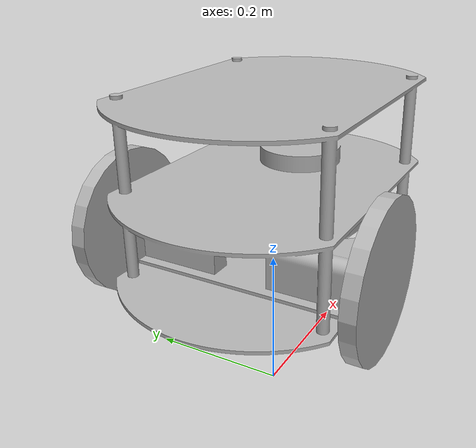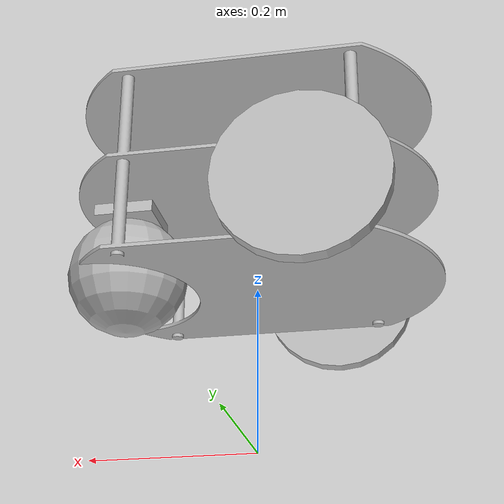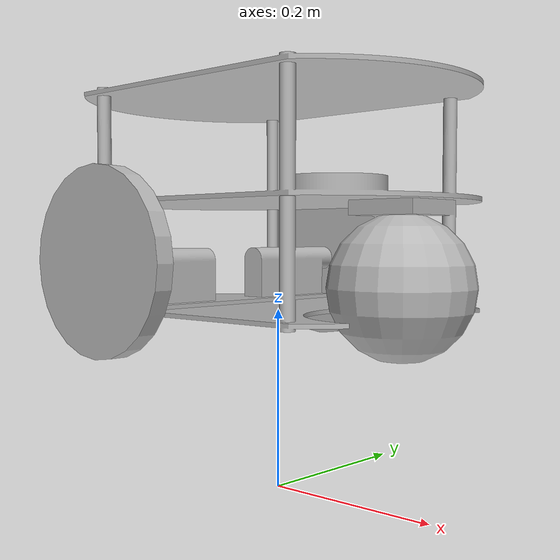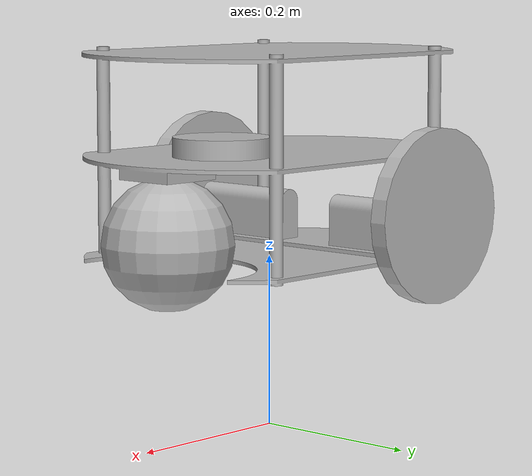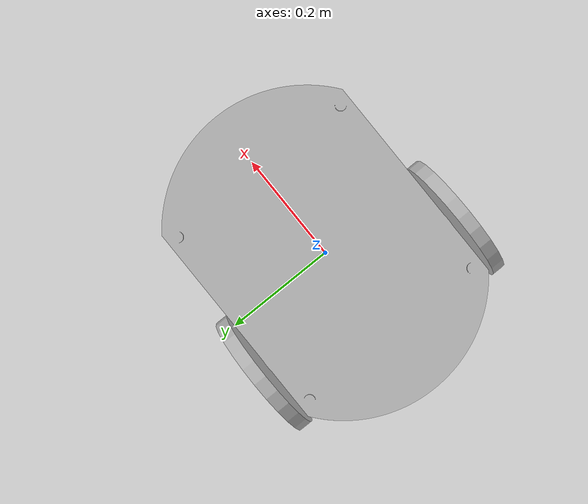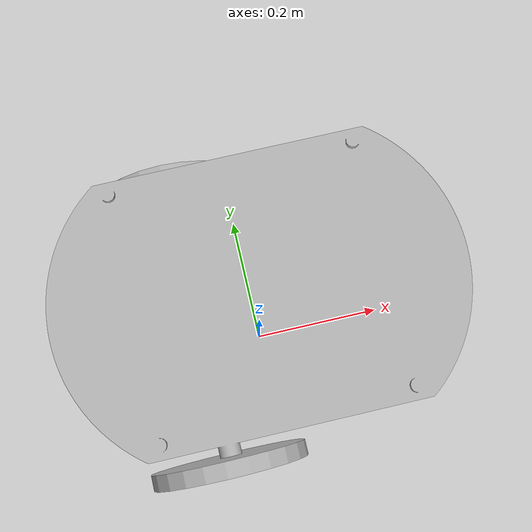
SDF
<?xml version='1.0'?>
<sdf version='1.4'>
  <model name="polybot">
  <static>false</static>

  %MAIN BODY
  <link name='base_link'>  <!-- WAS chassis -->
    <pose>0 0 0.2 0 0 0</pose>
    <collision name='chassis_collision'>
      <geometry>
        <box>
          <size>0.5 0.34 0.01</size>
        </box>
      </geometry>
    </collision>

    <visual name='chassis_visual'>
      <geometry>
        <mesh>
          <uri>package://polybot_robot/meshes/Chassis.stl</uri>
          <scale>0.0015 0.0015 0.0015</scale>
        </mesh>
      </geometry>
    </visual>

    %CASTER WHEEL

    <collision name='caster_collision'>
      <pose>0.165 0 0.03 0 0 0</pose>
        <geometry>
          <sphere>
            <radius>0.075</radius>
          </sphere>
        </geometry>

        <surface>
          <friction>
            <ode>
              <mu>0</mu>
              <mu2>0</mu2>
              <slip1>1.0</slip1>
              <slip2>1.0</slip2>
            </ode>
          </friction>
        </surface>
      </collision>

      <visual name='caster_visual'>
        <pose>0.165 0 0.03 0 0 0</pose>
        <geometry>
          <sphere>
            <radius>0.075</radius>
          </sphere>
        </geometry>
      </visual>

  </link>

  %WHEEL LEFT

  <link name='wheel_left'>
    <pose>-0.08 -0.18 0.255 0 1.5707 1.5707</pose>
    <collision name='collision'>
      <geometry>
        <cylinder>
          <radius>0.1</radius>
          <length>0.02</length>
        </cylinder>
      </geometry>
    </collision>

    <visual name='visual'>
      <geometry>
        <cylinder>
          <radius>0.1</radius>
          <length>0.02</length>
        </cylinder>
      </geometry>
    </visual>
  </link>

  %WHEEL RIGHT

  <link name='wheel_right'>
    <pose>-0.08 0.18 0.255 0 1.5707 1.5707</pose>
    <collision name='collision'>
      <geometry>
        <cylinder>
          <radius>0.1</radius>
          <length>0.02</length>
        </cylinder>
      </geometry>
    </collision>

    <visual name='visual'>
      <geometry>
        <cylinder>
          <radius>0.1</radius>
          <length>0.02</length>
        </cylinder>
      </geometry>
    </visual>
  </link>

  %JOINT LEFT

  <joint type="revolute" name="left_wheel_hinge">
    <pose>0 0 0 0 0 0</pose>
    <child>wheel_left</child>
    <parent>base_link</parent>
    <axis>
      <xyz>0 1 0</xyz>
    </axis>
  </joint>

  %JOINT RIGHT

  <joint type='revolute' name='right_wheel_hinge'>
    <pose>0 0 0 0 0 0</pose>
    <child>wheel_right</child>
    <parent>base_link</parent>
    <axis>
      <xyz>0 1 0</xyz>
    </axis>
  </joint>
  </model>
</sdf>
